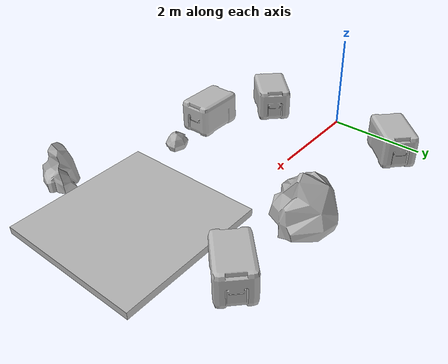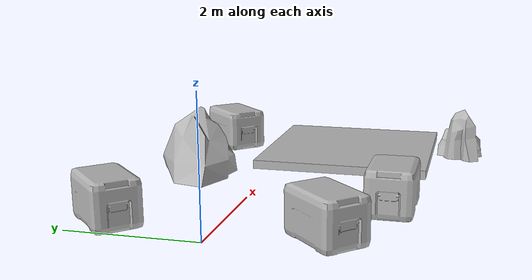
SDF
<sdf version="1.6">
 <world name="SRC_finals">
  <physics type="ode">
   <real_time_update_rate>1000.0</real_time_update_rate>
   <max_step_size>0.001</max_step_size>
   <real_time_factor>1</real_time_factor>
   <ode>
    <solver>
     <type>quick</type>
     <iters>150</iters>
     <precon_iters>0</precon_iters>
     <sor>1.400000</sor>
     <use_dynamic_moi_rescaling>1</use_dynamic_moi_rescaling>
    </solver>
    <constraints>
     <cfm>0.000000</cfm>
     <erp>0.800000</erp>
     <contact_max_correcting_vel>2000.000000</contact_max_correcting_vel>
     <contact_surface_layer>0.01000</contact_surface_layer>
    </constraints>
   </ode>
  </physics>
  <scene>
   <background>0.968627451 0.690196078 0.384313725 1.0</background>
   <grid>0</grid>
   <origin_visual>0</origin_visual>
  </scene>
  <light type="directional" name="sun">
   <pose>0 0 1000 -0.5809136300395572 -1.2292031043028233 0</pose>
   <diffuse>0.8 0.8 0.8 1</diffuse>
   <specular>0.2 0.2 0.2 1</specular>
   <attenuation>
    <range>1000</range>
    <constant>0.9</constant>
    <linear>0.01</linear>
    <quadratic>0.001</quadratic>
   </attenuation>
   <direction>-0.5 0.1 -0.9</direction>
  </light>
  <include>
   <name>mars_crate_long_1</name>
   <pose>0.4619999999999998
      -1.5620000000000003
      0
      0
      0
      -2.3561944901923453</pose>
   <uri>model://mars_crate_long</uri>
  </include>
  <include>
   <name>mars_crate_long_2</name>
   <pose>0.46200000000000035
      1.5619999999999998
      0
      0
      0
      0.785398163397448</pose>
   <uri>model://mars_crate_long</uri>
  </include>
  <plugin name="boxT1CP1" filename="libBoxContainsPlugin.so">
   <frequency>100</frequency>
   <entity>valkyrie</entity>
   <namespace>task1/checkpoint1</namespace>
   <pose>1.9860000000000002
        0.5619999999999994
        2.5
        0
        0
        1.5707963267948963</pose>
   <size>1 1 5</size>
  </plugin>
  <include>
   <name>mars_rock_3_3</name>
   <pose>3.3581774593052027
      1.3874174593052016
      0
      0
      0
      -0.7853981633974485</pose>
   <uri>model://mars_rock_3</uri>
  </include>
  <include>
   <name>mars_crate_long_4</name>
   <pose>1.9039093672711953
      -2.253050388568611
      0
      0
      0
      3.141592653589793</pose>
   <uri>model://mars_crate_long</uri>
  </include>
  <include>
   <name>mars_rock_1_5</name>
   <pose>3.0639547922204335
      -2.239764963619373
      0
      0
      0
      3.141592653589793</pose>
   <uri>model://mars_rock_1</uri>
  </include>
  <include>
   <name>walkway_4</name>
   <pose>5.349954792220434
      -1.077764963619373
      -0.052151
      0
      0
      3.141592653589793</pose>
   <uri>model://walkway_finish_opposite</uri>
  </include>
  <plugin name="boxT1CP3" filename="libBoxContainsPlugin.so">
   <frequency>100</frequency>
   <entity>valkyrie</entity>
   <namespace>task1/checkpoint3</namespace>
   <pose>5.349954792220434
        -1.077764963619373
        2.5
        0
        0
        3.141592653589793</pose>
   <size>3.048 3.048 5</size>
  </plugin>
  <include>
   <name>mars_crate_long_6</name>
   <pose>5.349954792220434
      1.2462350363806272
      0
      0
      0
      0.7853981633974481</pose>
   <uri>model://mars_crate_long</uri>
  </include>
  <include>
   <name>mars_rock_2_7</name>
   <pose>5.349954792220434
      -3.101764963619373
      0
      0
      0
      3.141592653589793</pose>
   <uri>model://mars_rock_2</uri>
  </include>
  <plugin name="finals" filename="libFinalsPlugin.so">
   <task_1_timeout>180</task_1_timeout>
   <task_1_checkpoint_2_pose>1.9860000000000002
          0.5619999999999994
          1.1
          0
          0
          1.5707963267948963</task_1_checkpoint_2_pose>
   <task_1_checkpoint_3_pose>1.9860000000000002
          0.5619999999999994
          1.1
          0
          0
          1.5707963267948963</task_1_checkpoint_3_pose>
  </plugin>
 </world>
</sdf>

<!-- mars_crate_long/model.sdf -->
<sdf version="1.5">
  <model name="mars_crate_long">
    <static>true</static>
    <link name="link">
      <collision name="collision">
        <geometry>
          <mesh>
            <uri>model://mars_crate_long/meshes/crate_long.obj</uri>
            <scale>0.03 0.03 0.03</scale>
          </mesh>
        </geometry>
      </collision>
      <visual name="visual">
        <geometry>
          <mesh>
            <uri>model://mars_crate_long/meshes/crate_long.obj</uri>
            <scale>0.03 0.03 0.03</scale>
          </mesh>
        </geometry>
      </visual>
    </link>
  </model>
</sdf>

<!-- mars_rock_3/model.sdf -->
<sdf version="1.5">
  <model name="mars_rock_3">
    <static>true</static>
    <link name="link">
      <collision name="collision">
        <geometry>
          <mesh>
            <uri>model://mars_rock_3/meshes/mars_rock_3.obj</uri>
            <scale>0.03 0.03 0.03</scale>
          </mesh>
        </geometry>
      </collision>
      <visual name="visual">
        <geometry>
          <mesh>
            <uri>model://mars_rock_3/meshes/mars_rock_3.obj</uri>
            <scale>0.03 0.03 0.03</scale>
          </mesh>
        </geometry>
      </visual>
    </link>
  </model>
</sdf>

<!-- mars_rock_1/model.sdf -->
<sdf version="1.5">
  <model name="mars_rock_1">
    <static>true</static>
    <link name="link">
      <collision name="collision">
        <geometry>
          <mesh>
            <uri>model://mars_rock_1/meshes/mars_rock_1.obj</uri>
            <scale>0.03 0.03 0.03</scale>
          </mesh>
        </geometry>
      </collision>
      <visual name="visual">
        <geometry>
          <mesh>
            <uri>model://mars_rock_1/meshes/mars_rock_1.obj</uri>
            <scale>0.03 0.03 0.03</scale>
          </mesh>
        </geometry>
      </visual>
    </link>
  </model>
</sdf>

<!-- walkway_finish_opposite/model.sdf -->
<sdf version="1.5">
  <model name="walkway_finish_opposite">
    <static>true</static>
    <link name="link">
      <collision name="collision">
        <pose>0 0 0.076075 0 0 0</pose>
        <geometry>
          <box>
            <size>3.048 3.048 0.15215</size>
          </box>
        </geometry>
      </collision>

      <visual name="visual">
        <geometry>
          <mesh>
            <scale>0.001 0.001 0.001</scale>
            <uri>model://walkway_finish_opposite/meshes/walkway_finish_opposite.obj</uri>
          </mesh>
        </geometry>
      </visual>
    </link>
  </model>
</sdf>

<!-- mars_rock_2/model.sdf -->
<sdf version="1.5">
  <model name="mars_rock_2">
    <static>true</static>
    <link name="link">
      <collision name="collision">
        <geometry>
          <mesh>
            <uri>model://mars_rock_2/meshes/mars_rock_2.obj</uri>
            <scale>0.03 0.03 0.03</scale>
          </mesh>
        </geometry>
      </collision>
      <visual name="visual">
        <geometry>
          <mesh>
            <uri>model://mars_rock_2/meshes/mars_rock_2.obj</uri>
            <scale>0.03 0.03 0.03</scale>
          </mesh>
        </geometry>
      </visual>
    </link>
  </model>
</sdf>
